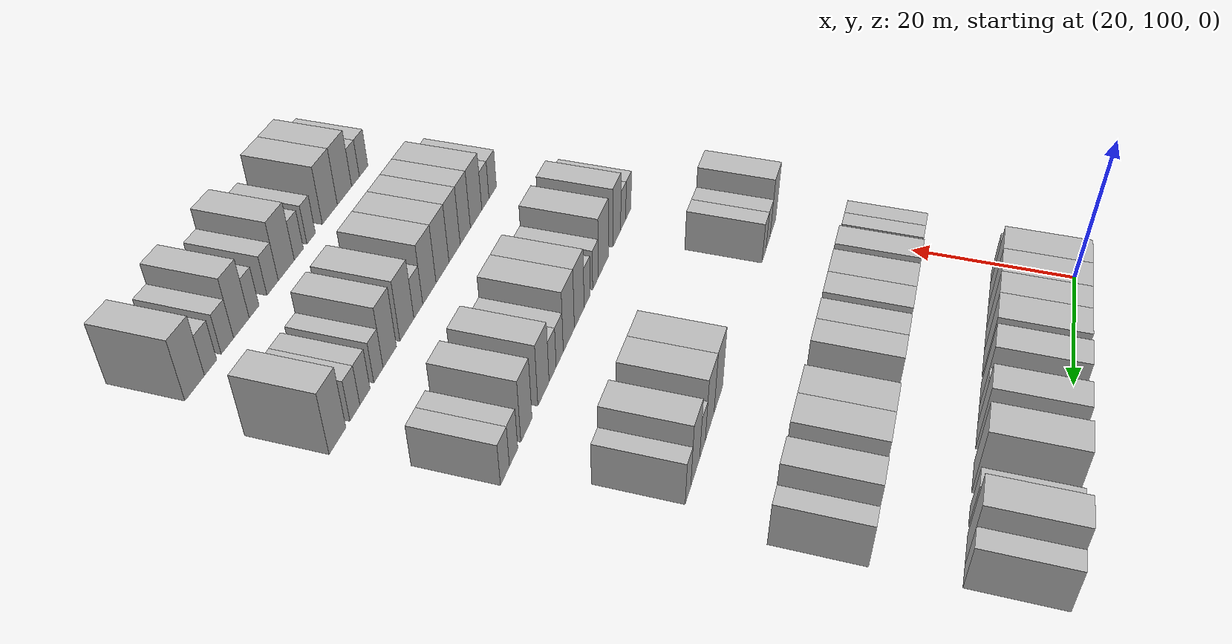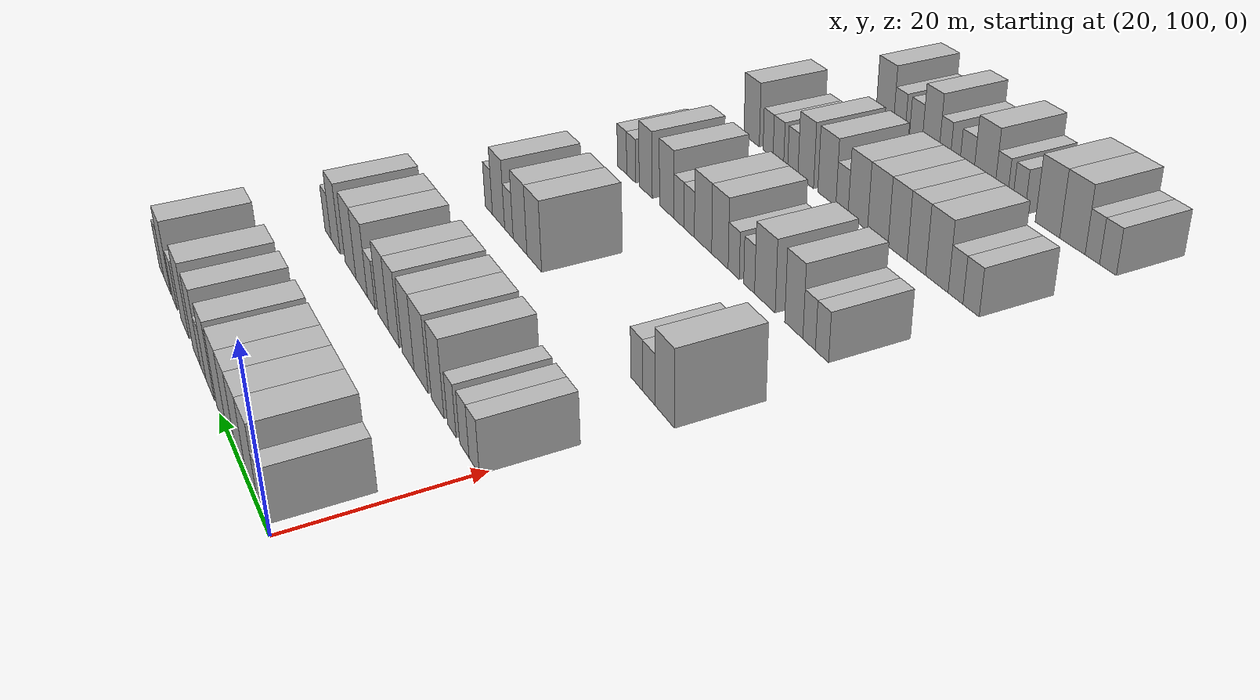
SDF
<sdf version="1.6">
 <world name="default">
  <model name="building_112">
   <static>1</static>
   <pose>25.0000 102.9761 0 0.000000 0.000000 0.000000</pose>
   <link name="link">
    <pose>0 0 3.00 0 0 0</pose>
    <collision name="collision"><geometry><box><size>10.0000 2.6244 6.0000</size></box></geometry></collision>
    <visual name="visual">
     <cast_shadows>0</cast_shadows>
     <geometry><box><size>10.0000 2.6244 6.0000</size></box></geometry>
     <material>
      <script>
       <uri>model://HANNAS_wall/materials/scripts</uri>
       <uri>model://HANNAS_wall/materials/textures</uri>
       <name>vrc/HANNAS_wall</name>
      </script>
     </material>
    </visual>
   </link>
  </model>
  <model name="building_113">
   <static>1</static>
   <pose>25.0000 106.5066 0 0.000000 0.000000 0.000000</pose>
   <link name="link">
    <pose>0 0 4.50 0 0 0</pose>
    <collision name="collision"><geometry><box><size>10.0000 4.4366 9.0000</size></box></geometry></collision>
    <visual name="visual">
     <cast_shadows>0</cast_shadows>
     <geometry><box><size>10.0000 4.4366 9.0000</size></box></geometry>
     <material>
      <script>
       <uri>model://HANNAS_wall/materials/scripts</uri>
       <uri>model://HANNAS_wall/materials/textures</uri>
       <name>vrc/HANNAS_wall</name>
      </script>
     </material>
    </visual>
   </link>
  </model>
  <model name="building_114">
   <static>1</static>
   <pose>25.0000 110.9245 0 0.000000 0.000000 0.000000</pose>
   <link name="link">
    <pose>0 0 4.50 0 0 0</pose>
    <collision name="collision"><geometry><box><size>10.0000 4.3992 9.0000</size></box></geometry></collision>
    <visual name="visual">
     <cast_shadows>0</cast_shadows>
     <geometry><box><size>10.0000 4.3992 9.0000</size></box></geometry>
     <material>
      <script>
       <uri>model://HANNAS_wall/materials/scripts</uri>
       <uri>model://HANNAS_wall/materials/textures</uri>
       <name>vrc/HANNAS_wall</name>
      </script>
     </material>
    </visual>
   </link>
  </model>
  <model name="building_115">
   <static>1</static>
   <pose>25.0000 115.0975 0 0.000000 0.000000 0.000000</pose>
   <link name="link">
    <pose>0 0 4.50 0 0 0</pose>
    <collision name="collision"><geometry><box><size>10.0000 3.9470 9.0000</size></box></geometry></collision>
    <visual name="visual">
     <cast_shadows>0</cast_shadows>
     <geometry><box><size>10.0000 3.9470 9.0000</size></box></geometry>
     <material>
      <script>
       <uri>model://HANNAS_wall/materials/scripts</uri>
       <uri>model://HANNAS_wall/materials/textures</uri>
       <name>vrc/HANNAS_wall</name>
      </script>
     </material>
    </visual>
   </link>
  </model>
  <model name="building_116">
   <static>1</static>
   <pose>25.0000 119.3025 0 0.000000 0.000000 0.000000</pose>
   <link name="link">
    <pose>0 0 4.50 0 0 0</pose>
    <collision name="collision"><geometry><box><size>10.0000 4.4630 9.0000</size></box></geometry></collision>
    <visual name="visual">
     <cast_shadows>0</cast_shadows>
     <geometry><box><size>10.0000 4.4630 9.0000</size></box></geometry>
     <material>
      <script>
       <uri>model://HANNAS_wall/materials/scripts</uri>
       <uri>model://HANNAS_wall/materials/textures</uri>
       <name>vrc/HANNAS_wall</name>
      </script>
     </material>
    </visual>
   </link>
  </model>
  <model name="building_117">
   <static>1</static>
   <pose>25.0000 124.5095 0 0.000000 0.000000 0.000000</pose>
   <link name="link">
    <pose>0 0 4.50 0 0 0</pose>
    <collision name="collision"><geometry><box><size>10.0000 3.9509 9.0000</size></box></geometry></collision>
    <visual name="visual">
     <cast_shadows>0</cast_shadows>
     <geometry><box><size>10.0000 3.9509 9.0000</size></box></geometry>
     <material>
      <script>
       <uri>model://HANNAS_wall/materials/scripts</uri>
       <uri>model://HANNAS_wall/materials/textures</uri>
       <name>vrc/HANNAS_wall</name>
      </script>
     </material>
    </visual>
   </link>
  </model>
  <model name="building_118">
   <static>1</static>
   <pose>25.0000 127.8314 0 0.000000 0.000000 0.000000</pose>
   <link name="link">
    <pose>0 0 3.00 0 0 0</pose>
    <collision name="collision"><geometry><box><size>10.0000 2.6929 6.0000</size></box></geometry></collision>
    <visual name="visual">
     <cast_shadows>0</cast_shadows>
     <geometry><box><size>10.0000 2.6929 6.0000</size></box></geometry>
     <material>
      <script>
       <uri>model://HANNAS_wall/materials/scripts</uri>
       <uri>model://HANNAS_wall/materials/textures</uri>
       <name>vrc/HANNAS_wall</name>
      </script>
     </material>
    </visual>
   </link>
  </model>
  <model name="building_119">
   <static>1</static>
   <pose>25.0000 131.0985 0 0.000000 0.000000 0.000000</pose>
   <link name="link">
    <pose>0 0 4.50 0 0 0</pose>
    <collision name="collision"><geometry><box><size>10.0000 3.8414 9.0000</size></box></geometry></collision>
    <visual name="visual">
     <cast_shadows>0</cast_shadows>
     <geometry><box><size>10.0000 3.8414 9.0000</size></box></geometry>
     <material>
      <script>
       <uri>model://HANNAS_wall/materials/scripts</uri>
       <uri>model://HANNAS_wall/materials/textures</uri>
       <name>vrc/HANNAS_wall</name>
      </script>
     </material>
    </visual>
   </link>
  </model>
  <model name="building_120">
   <static>1</static>
   <pose>25.0000 137.2271 0 0.000000 0.000000 0.000000</pose>
   <link name="link">
    <pose>0 0 4.50 0 0 0</pose>
    <collision name="collision"><geometry><box><size>10.0000 4.4159 9.0000</size></box></geometry></collision>
    <visual name="visual">
     <cast_shadows>0</cast_shadows>
     <geometry><box><size>10.0000 4.4159 9.0000</size></box></geometry>
     <material>
      <script>
       <uri>model://HANNAS_wall/materials/scripts</uri>
       <uri>model://HANNAS_wall/materials/textures</uri>
       <name>vrc/HANNAS_wall</name>
      </script>
     </material>
    </visual>
   </link>
  </model>
  <model name="building_121">
   <static>1</static>
   <pose>25.0000 142.7573 0 0.000000 0.000000 0.000000</pose>
   <link name="link">
    <pose>0 0 3.00 0 0 0</pose>
    <collision name="collision"><geometry><box><size>10.0000 2.6445 6.0000</size></box></geometry></collision>
    <visual name="visual">
     <cast_shadows>0</cast_shadows>
     <geometry><box><size>10.0000 2.6445 6.0000</size></box></geometry>
     <material>
      <script>
       <uri>model://HANNAS_wall/materials/scripts</uri>
       <uri>model://HANNAS_wall/materials/textures</uri>
       <name>vrc/HANNAS_wall</name>
      </script>
     </material>
    </visual>
   </link>
  </model>
  <model name="building_122">
   <static>1</static>
   <pose>25.0000 147.1437 0 0.000000 0.000000 0.000000</pose>
   <link name="link">
    <pose>0 0 4.50 0 0 0</pose>
    <collision name="collision"><geometry><box><size>10.0000 4.1284 9.0000</size></box></geometry></collision>
    <visual name="visual">
     <cast_shadows>0</cast_shadows>
     <geometry><box><size>10.0000 4.1284 9.0000</size></box></geometry>
     <material>
      <script>
       <uri>model://HANNAS_wall/materials/scripts</uri>
       <uri>model://HANNAS_wall/materials/textures</uri>
       <name>vrc/HANNAS_wall</name>
      </script>
     </material>
    </visual>
   </link>
  </model>
  <model name="building_123">
   <static>1</static>
   <pose>25.0000 150.5552 0 0.000000 0.000000 0.000000</pose>
   <link name="link">
    <pose>0 0 3.00 0 0 0</pose>
    <collision name="collision"><geometry><box><size>10.0000 2.6947 6.0000</size></box></geometry></collision>
    <visual name="visual">
     <cast_shadows>0</cast_shadows>
     <geometry><box><size>10.0000 2.6947 6.0000</size></box></geometry>
     <material>
      <script>
       <uri>model://HANNAS_wall/materials/scripts</uri>
       <uri>model://HANNAS_wall/materials/textures</uri>
       <name>vrc/HANNAS_wall</name>
      </script>
     </material>
    </visual>
   </link>
  </model>
  <model name="building_283">
   <static>1</static>
   <pose>44.0000 101.2700 0 0.000000 0.000000 0.000000</pose>
   <link name="link">
    <pose>0 0 3.00 0 0 0</pose>
    <collision name="collision"><geometry><box><size>10.0000 2.6742 6.0000</size></box></geometry></collision>
    <visual name="visual">
     <cast_shadows>0</cast_shadows>
     <geometry><box><size>10.0000 2.6742 6.0000</size></box></geometry>
     <material>
      <script>
       <uri>model://HANNAS_wall/materials/scripts</uri>
       <uri>model://HANNAS_wall/materials/textures</uri>
       <name>vrc/HANNAS_wall</name>
      </script>
     </material>
    </visual>
   </link>
  </model>
  <model name="building_284">
   <static>1</static>
   <pose>44.0000 103.8863 0 0.000000 0.000000 0.000000</pose>
   <link name="link">
    <pose>0 0 3.00 0 0 0</pose>
    <collision name="collision"><geometry><box><size>10.0000 2.5584 6.0000</size></box></geometry></collision>
    <visual name="visual">
     <cast_shadows>0</cast_shadows>
     <geometry><box><size>10.0000 2.5584 6.0000</size></box></geometry>
     <material>
      <script>
       <uri>model://HANNAS_wall/materials/scripts</uri>
       <uri>model://HANNAS_wall/materials/textures</uri>
       <name>vrc/HANNAS_wall</name>
      </script>
     </material>
    </visual>
   </link>
  </model>
  <model name="building_285">
   <static>1</static>
   <pose>44.0000 107.3818 0 0.000000 0.000000 0.000000</pose>
   <link name="link">
    <pose>0 0 3.00 0 0 0</pose>
    <collision name="collision"><geometry><box><size>10.0000 2.4325 6.0000</size></box></geometry></collision>
    <visual name="visual">
     <cast_shadows>0</cast_shadows>
     <geometry><box><size>10.0000 2.4325 6.0000</size></box></geometry>
     <material>
      <script>
       <uri>model://HANNAS_wall/materials/scripts</uri>
       <uri>model://HANNAS_wall/materials/textures</uri>
       <name>vrc/HANNAS_wall</name>
      </script>
     </material>
    </visual>
   </link>
  </model>
  <model name="building_286">
   <static>1</static>
   <pose>44.0000 111.4517 0 0.000000 0.000000 0.000000</pose>
   <link name="link">
    <pose>0 0 4.50 0 0 0</pose>
    <collision name="collision"><geometry><box><size>10.0000 3.7073 9.0000</size></box></geometry></collision>
    <visual name="visual">
     <cast_shadows>0</cast_shadows>
     <geometry><box><size>10.0000 3.7073 9.0000</size></box></geometry>
     <material>
      <script>
       <uri>model://HANNAS_wall/materials/scripts</uri>
       <uri>model://HANNAS_wall/materials/textures</uri>
       <name>vrc/HANNAS_wall</name>
      </script>
     </material>
    </visual>
   </link>
  </model>
  <model name="building_287">
   <static>1</static>
   <pose>44.0000 116.4808 0 0.000000 0.000000 0.000000</pose>
   <link name="link">
    <pose>0 0 4.50 0 0 0</pose>
    <collision name="collision"><geometry><box><size>10.0000 4.3509 9.0000</size></box></geometry></collision>
    <visual name="visual">
     <cast_shadows>0</cast_shadows>
     <geometry><box><size>10.0000 4.3509 9.0000</size></box></geometry>
     <material>
      <script>
       <uri>model://HANNAS_wall/materials/scripts</uri>
       <uri>model://HANNAS_wall/materials/textures</uri>
       <name>vrc/HANNAS_wall</name>
      </script>
     </material>
    </visual>
   </link>
  </model>
  <model name="building_288">
   <static>1</static>
   <pose>44.0000 120.5811 0 0.000000 0.000000 0.000000</pose>
   <link name="link">
    <pose>0 0 4.50 0 0 0</pose>
    <collision name="collision"><geometry><box><size>10.0000 3.8497 9.0000</size></box></geometry></collision>
    <visual name="visual">
     <cast_shadows>0</cast_shadows>
     <geometry><box><size>10.0000 3.8497 9.0000</size></box></geometry>
     <material>
      <script>
       <uri>model://HANNAS_wall/materials/scripts</uri>
       <uri>model://HANNAS_wall/materials/textures</uri>
       <name>vrc/HANNAS_wall</name>
      </script>
     </material>
    </visual>
   </link>
  </model>
  <model name="building_289">
   <static>1</static>
   <pose>44.0000 125.3266 0 0.000000 0.000000 0.000000</pose>
   <link name="link">
    <pose>0 0 4.50 0 0 0</pose>
    <collision name="collision"><geometry><box><size>10.0000 3.6413 9.0000</size></box></geometry></collision>
    <visual name="visual">
     <cast_shadows>0</cast_shadows>
     <geometry><box><size>10.0000 3.6413 9.0000</size></box></geometry>
     <material>
      <script>
       <uri>model://HANNAS_wall/materials/scripts</uri>
       <uri>model://HANNAS_wall/materials/textures</uri>
       <name>vrc/HANNAS_wall</name>
      </script>
     </material>
    </visual>
   </link>
  </model>
  <model name="building_290">
   <static>1</static>
   <pose>44.0000 129.0394 0 0.000000 0.000000 0.000000</pose>
   <link name="link">
    <pose>0 0 4.50 0 0 0</pose>
    <collision name="collision"><geometry><box><size>10.0000 3.7844 9.0000</size></box></geometry></collision>
    <visual name="visual">
     <cast_shadows>0</cast_shadows>
     <geometry><box><size>10.0000 3.7844 9.0000</size></box></geometry>
     <material>
      <script>
       <uri>model://HANNAS_wall/materials/scripts</uri>
       <uri>model://HANNAS_wall/materials/textures</uri>
       <name>vrc/HANNAS_wall</name>
      </script>
     </material>
    </visual>
   </link>
  </model>
  <model name="building_291">
   <static>1</static>
   <pose>44.0000 133.3731 0 0.000000 0.000000 0.000000</pose>
   <link name="link">
    <pose>0 0 3.00 0 0 0</pose>
    <collision name="collision"><geometry><box><size>10.0000 2.8829 6.0000</size></box></geometry></collision>
    <visual name="visual">
     <cast_shadows>0</cast_shadows>
     <geometry><box><size>10.0000 2.8829 6.0000</size></box></geometry>
     <material>
      <script>
       <uri>model://HANNAS_wall/materials/scripts</uri>
       <uri>model://HANNAS_wall/materials/textures</uri>
       <name>vrc/HANNAS_wall</name>
      </script>
     </material>
    </visual>
   </link>
  </model>
  <model name="building_292">
   <static>1</static>
   <pose>44.0000 136.9829 0 0.000000 0.000000 0.000000</pose>
   <link name="link">
    <pose>0 0 4.50 0 0 0</pose>
    <collision name="collision"><geometry><box><size>10.0000 4.3368 9.0000</size></box></geometry></collision>
    <visual name="visual">
     <cast_shadows>0</cast_shadows>
     <geometry><box><size>10.0000 4.3368 9.0000</size></box></geometry>
     <material>
      <script>
       <uri>model://HANNAS_wall/materials/scripts</uri>
       <uri>model://HANNAS_wall/materials/textures</uri>
       <name>vrc/HANNAS_wall</name>
      </script>
     </material>
    </visual>
   </link>
  </model>
  <model name="building_293">
   <static>1</static>
   <pose>44.0000 141.3079 0 0.000000 0.000000 0.000000</pose>
   <link name="link">
    <pose>0 0 4.50 0 0 0</pose>
    <collision name="collision"><geometry><box><size>10.0000 4.3132 9.0000</size></box></geometry></collision>
    <visual name="visual">
     <cast_shadows>0</cast_shadows>
     <geometry><box><size>10.0000 4.3132 9.0000</size></box></geometry>
     <material>
      <script>
       <uri>model://HANNAS_wall/materials/scripts</uri>
       <uri>model://HANNAS_wall/materials/textures</uri>
       <name>vrc/HANNAS_wall</name>
      </script>
     </material>
    </visual>
   </link>
  </model>
  <model name="building_294">
   <static>1</static>
   <pose>44.0000 147.3736 0 0.000000 0.000000 0.000000</pose>
   <link name="link">
    <pose>0 0 4.50 0 0 0</pose>
    <collision name="collision"><geometry><box><size>10.0000 3.8181 9.0000</size></box></geometry></collision>
    <visual name="visual">
     <cast_shadows>0</cast_shadows>
     <geometry><box><size>10.0000 3.8181 9.0000</size></box></geometry>
     <material>
      <script>
       <uri>model://HANNAS_wall/materials/scripts</uri>
       <uri>model://HANNAS_wall/materials/textures</uri>
       <name>vrc/HANNAS_wall</name>
      </script>
     </material>
    </visual>
   </link>
  </model>
  <model name="building_295">
   <static>1</static>
   <pose>44.0000 150.6027 0 0.000000 0.000000 0.000000</pose>
   <link name="link">
    <pose>0 0 3.00 0 0 0</pose>
    <collision name="collision"><geometry><box><size>10.0000 2.6401 6.0000</size></box></geometry></collision>
    <visual name="visual">
     <cast_shadows>0</cast_shadows>
     <geometry><box><size>10.0000 2.6401 6.0000</size></box></geometry>
     <material>
      <script>
       <uri>model://HANNAS_wall/materials/scripts</uri>
       <uri>model://HANNAS_wall/materials/textures</uri>
       <name>vrc/HANNAS_wall</name>
      </script>
     </material>
    </visual>
   </link>
  </model>
  <model name="building_454">
   <static>1</static>
   <pose>63.0000 100.3011 0 0.000000 0.000000 0.000000</pose>
   <link name="link">
    <pose>0 0 4.50 0 0 0</pose>
    <collision name="collision"><geometry><box><size>10.0000 4.1284 9.0000</size></box></geometry></collision>
    <visual name="visual">
     <cast_shadows>0</cast_shadows>
     <geometry><box><size>10.0000 4.1284 9.0000</size></box></geometry>
     <material>
      <script>
       <uri>model://HANNAS_wall/materials/scripts</uri>
       <uri>model://HANNAS_wall/materials/textures</uri>
       <name>vrc/HANNAS_wall</name>
      </script>
     </material>
    </visual>
   </link>
  </model>
  <model name="building_455">
   <static>1</static>
   <pose>63.0000 103.7687 0 0.000000 0.000000 0.000000</pose>
   <link name="link">
    <pose>0 0 3.00 0 0 0</pose>
    <collision name="collision"><geometry><box><size>10.0000 2.8069 6.0000</size></box></geometry></collision>
    <visual name="visual">
     <cast_shadows>0</cast_shadows>
     <geometry><box><size>10.0000 2.8069 6.0000</size></box></geometry>
     <material>
      <script>
       <uri>model://HANNAS_wall/materials/scripts</uri>
       <uri>model://HANNAS_wall/materials/textures</uri>
       <name>vrc/HANNAS_wall</name>
      </script>
     </material>
    </visual>
   </link>
  </model>
  <model name="building_456">
   <static>1</static>
   <pose>63.0000 106.5194 0 0.000000 0.000000 0.000000</pose>
   <link name="link">
    <pose>0 0 3.00 0 0 0</pose>
    <collision name="collision"><geometry><box><size>10.0000 2.6943 6.0000</size></box></geometry></collision>
    <visual name="visual">
     <cast_shadows>0</cast_shadows>
     <geometry><box><size>10.0000 2.6943 6.0000</size></box></geometry>
     <material>
      <script>
       <uri>model://HANNAS_wall/materials/scripts</uri>
       <uri>model://HANNAS_wall/materials/textures</uri>
       <name>vrc/HANNAS_wall</name>
      </script>
     </material>
    </visual>
   </link>
  </model>
  <model name="building_457">
   <static>1</static>
   <pose>63.0000 133.4532 0 0.000000 0.000000 0.000000</pose>
   <link name="link">
    <pose>0 0 4.50 0 0 0</pose>
    <collision name="collision"><geometry><box><size>10.0000 4.3911 9.0000</size></box></geometry></collision>
    <visual name="visual">
     <cast_shadows>0</cast_shadows>
     <geometry><box><size>10.0000 4.3911 9.0000</size></box></geometry>
     <material>
      <script>
       <uri>model://HANNAS_wall/materials/scripts</uri>
       <uri>model://HANNAS_wall/materials/textures</uri>
       <name>vrc/HANNAS_wall</name>
      </script>
     </material>
    </visual>
   </link>
  </model>
  <model name="building_458">
   <static>1</static>
   <pose>63.0000 137.7979 0 0.000000 0.000000 0.000000</pose>
   <link name="link">
    <pose>0 0 4.50 0 0 0</pose>
    <collision name="collision"><geometry><box><size>10.0000 4.2982 9.0000</size></box></geometry></collision>
    <visual name="visual">
     <cast_shadows>0</cast_shadows>
     <geometry><box><size>10.0000 4.2982 9.0000</size></box></geometry>
     <material>
      <script>
       <uri>model://HANNAS_wall/materials/scripts</uri>
       <uri>model://HANNAS_wall/materials/textures</uri>
       <name>vrc/HANNAS_wall</name>
      </script>
     </material>
    </visual>
   </link>
  </model>
  <model name="building_459">
   <static>1</static>
   <pose>63.0000 141.3113 0 0.000000 0.000000 0.000000</pose>
   <link name="link">
    <pose>0 0 3.00 0 0 0</pose>
    <collision name="collision"><geometry><box><size>10.0000 2.7286 6.0000</size></box></geometry></collision>
    <visual name="visual">
     <cast_shadows>0</cast_shadows>
     <geometry><box><size>10.0000 2.7286 6.0000</size></box></geometry>
     <material>
      <script>
       <uri>model://HANNAS_wall/materials/scripts</uri>
       <uri>model://HANNAS_wall/materials/textures</uri>
       <name>vrc/HANNAS_wall</name>
      </script>
     </material>
    </visual>
   </link>
  </model>
  <model name="building_460">
   <static>1</static>
   <pose>63.0000 144.6916 0 0.000000 0.000000 0.000000</pose>
   <link name="link">
    <pose>0 0 4.50 0 0 0</pose>
    <collision name="collision"><geometry><box><size>10.0000 4.0320 9.0000</size></box></geometry></collision>
    <visual name="visual">
     <cast_shadows>0</cast_shadows>
     <geometry><box><size>10.0000 4.0320 9.0000</size></box></geometry>
     <material>
      <script>
       <uri>model://HANNAS_wall/materials/scripts</uri>
       <uri>model://HANNAS_wall/materials/textures</uri>
       <name>vrc/HANNAS_wall</name>
      </script>
     </material>
    </visual>
   </link>
  </model>
  <model name="building_461">
   <static>1</static>
   <pose>63.0000 147.9369 0 0.000000 0.000000 0.000000</pose>
   <link name="link">
    <pose>0 0 3.00 0 0 0</pose>
    <collision name="collision"><geometry><box><size>10.0000 2.4587 6.0000</size></box></geometry></collision>
    <visual name="visual">
     <cast_shadows>0</cast_shadows>
     <geometry><box><size>10.0000 2.4587 6.0000</size></box></geometry>
     <material>
      <script>
       <uri>model://HANNAS_wall/materials/scripts</uri>
       <uri>model://HANNAS_wall/materials/textures</uri>
       <name>vrc/HANNAS_wall</name>
      </script>
     </material>
    </visual>
   </link>
  </model>
  <model name="building_624">
   <static>1</static>
   <pose>82.0000 102.4668 0 0.000000 0.000000 0.000000</pose>
   <link name="link">
    <pose>0 0 3.00 0 0 0</pose>
    <collision name="collision"><geometry><box><size>10.0000 2.5562 6.0000</size></box></geometry></collision>
    <visual name="visual">
     <cast_shadows>0</cast_shadows>
     <geometry><box><size>10.0000 2.5562 6.0000</size></box></geometry>
     <material>
      <script>
       <uri>model://HANNAS_wall/materials/scripts</uri>
       <uri>model://HANNAS_wall/materials/textures</uri>
       <name>vrc/HANNAS_wall</name>
      </script>
     </material>
    </visual>
   </link>
  </model>
  <model name="building_625">
   <static>1</static>
   <pose>82.0000 104.9858 0 0.000000 0.000000 0.000000</pose>
   <link name="link">
    <pose>0 0 3.00 0 0 0</pose>
    <collision name="collision"><geometry><box><size>10.0000 2.4817 6.0000</size></box></geometry></collision>
    <visual name="visual">
     <cast_shadows>0</cast_shadows>
     <geometry><box><size>10.0000 2.4817 6.0000</size></box></geometry>
     <material>
      <script>
       <uri>model://HANNAS_wall/materials/scripts</uri>
       <uri>model://HANNAS_wall/materials/textures</uri>
       <name>vrc/HANNAS_wall</name>
      </script>
     </material>
    </visual>
   </link>
  </model>
  <model name="building_626">
   <static>1</static>
   <pose>82.0000 108.0893 0 0.000000 0.000000 0.000000</pose>
   <link name="link">
    <pose>0 0 4.50 0 0 0</pose>
    <collision name="collision"><geometry><box><size>10.0000 3.7255 9.0000</size></box></geometry></collision>
    <visual name="visual">
     <cast_shadows>0</cast_shadows>
     <geometry><box><size>10.0000 3.7255 9.0000</size></box></geometry>
     <material>
      <script>
       <uri>model://HANNAS_wall/materials/scripts</uri>
       <uri>model://HANNAS_wall/materials/textures</uri>
       <name>vrc/HANNAS_wall</name>
      </script>
     </material>
    </visual>
   </link>
  </model>
  <model name="building_627">
   <static>1</static>
   <pose>82.0000 114.1922 0 0.000000 0.000000 0.000000</pose>
   <link name="link">
    <pose>0 0 4.50 0 0 0</pose>
    <collision name="collision"><geometry><box><size>10.0000 4.4802 9.0000</size></box></geometry></collision>
    <visual name="visual">
     <cast_shadows>0</cast_shadows>
     <geometry><box><size>10.0000 4.4802 9.0000</size></box></geometry>
     <material>
      <script>
       <uri>model://HANNAS_wall/materials/scripts</uri>
       <uri>model://HANNAS_wall/materials/textures</uri>
       <name>vrc/HANNAS_wall</name>
      </script>
     </material>
    </visual>
   </link>
  </model>
  <model name="building_628">
   <static>1</static>
   <pose>82.0000 117.6572 0 0.000000 0.000000 0.000000</pose>
   <link name="link">
    <pose>0 0 3.00 0 0 0</pose>
    <collision name="collision"><geometry><box><size>10.0000 2.4496 6.0000</size></box></geometry></collision>
    <visual name="visual">
     <cast_shadows>0</cast_shadows>
     <geometry><box><size>10.0000 2.4496 6.0000</size></box></geometry>
     <material>
      <script>
       <uri>model://HANNAS_wall/materials/scripts</uri>
       <uri>model://HANNAS_wall/materials/textures</uri>
       <name>vrc/HANNAS_wall</name>
      </script>
     </material>
    </visual>
   </link>
  </model>
  <model name="building_629">
   <static>1</static>
   <pose>82.0000 121.1726 0 0.000000 0.000000 0.000000</pose>
   <link name="link">
    <pose>0 0 3.00 0 0 0</pose>
    <collision name="collision"><geometry><box><size>10.0000 2.5813 6.0000</size></box></geometry></collision>
    <visual name="visual">
     <cast_shadows>0</cast_shadows>
     <geometry><box><size>10.0000 2.5813 6.0000</size></box></geometry>
     <material>
      <script>
       <uri>model://HANNAS_wall/materials/scripts</uri>
       <uri>model://HANNAS_wall/materials/textures</uri>
       <name>vrc/HANNAS_wall</name>
      </script>
     </material>
    </visual>
   </link>
  </model>
  <model name="building_630">
   <static>1</static>
   <pose>82.0000 124.4366 0 0.000000 0.000000 0.000000</pose>
   <link name="link">
    <pose>0 0 4.50 0 0 0</pose>
    <collision name="collision"><geometry><box><size>10.0000 3.9466 9.0000</size></box></geometry></collision>
    <visual name="visual">
     <cast_shadows>0</cast_shadows>
     <geometry><box><size>10.0000 3.9466 9.0000</size></box></geometry>
     <material>
      <script>
       <uri>model://HANNAS_wall/materials/scripts</uri>
       <uri>model://HANNAS_wall/materials/textures</uri>
       <name>vrc/HANNAS_wall</name>
      </script>
     </material>
    </visual>
   </link>
  </model>
  <model name="building_631">
   <static>1</static>
   <pose>82.0000 128.5493 0 0.000000 0.000000 0.000000</pose>
   <link name="link">
    <pose>0 0 4.50 0 0 0</pose>
    <collision name="collision"><geometry><box><size>10.0000 4.2789 9.0000</size></box></geometry></collision>
    <visual name="visual">
     <cast_shadows>0</cast_shadows>
     <geometry><box><size>10.0000 4.2789 9.0000</size></box></geometry>
     <material>
      <script>
       <uri>model://HANNAS_wall/materials/scripts</uri>
       <uri>model://HANNAS_wall/materials/textures</uri>
       <name>vrc/HANNAS_wall</name>
      </script>
     </material>
    </visual>
   </link>
  </model>
  <model name="building_632">
   <static>1</static>
   <pose>82.0000 132.0254 0 0.000000 0.000000 0.000000</pose>
   <link name="link">
    <pose>0 0 3.00 0 0 0</pose>
    <collision name="collision"><geometry><box><size>10.0000 2.6733 6.0000</size></box></geometry></collision>
    <visual name="visual">
     <cast_shadows>0</cast_shadows>
     <geometry><box><size>10.0000 2.6733 6.0000</size></box></geometry>
     <material>
      <script>
       <uri>model://HANNAS_wall/materials/scripts</uri>
       <uri>model://HANNAS_wall/materials/textures</uri>
       <name>vrc/HANNAS_wall</name>
      </script>
     </material>
    </visual>
   </link>
  </model>
  <model name="building_633">
   <static>1</static>
   <pose>82.0000 134.6490 0 0.000000 0.000000 0.000000</pose>
   <link name="link">
    <pose>0 0 3.00 0 0 0</pose>
    <collision name="collision"><geometry><box><size>10.0000 2.5739 6.0000</size></box></geometry></collision>
    <visual name="visual">
     <cast_shadows>0</cast_shadows>
     <geometry><box><size>10.0000 2.5739 6.0000</size></box></geometry>
     <material>
      <script>
       <uri>model://HANNAS_wall/materials/scripts</uri>
       <uri>model://HANNAS_wall/materials/textures</uri>
       <name>vrc/HANNAS_wall</name>
      </script>
     </material>
    </visual>
   </link>
  </model>
  <model name="building_634">
   <static>1</static>
   <pose>82.0000 137.9061 0 0.000000 0.000000 0.000000</pose>
   <link name="link">
    <pose>0 0 4.50 0 0 0</pose>
    <collision name="collision"><geometry><box><size>10.0000 3.9403 9.0000</size></box></geometry></collision>
    <visual name="visual">
     <cast_shadows>0</cast_shadows>
     <geometry><box><size>10.0000 3.9403 9.0000</size></box></geometry>
     <material>
      <script>
       <uri>model://HANNAS_wall/materials/scripts</uri>
       <uri>model://HANNAS_wall/materials/textures</uri>
       <name>vrc/HANNAS_wall</name>
      </script>
     </material>
    </visual>
   </link>
  </model>
  <model name="building_635">
   <static>1</static>
   <pose>82.0000 143.7224 0 0.000000 0.000000 0.000000</pose>
   <link name="link">
    <pose>0 0 4.50 0 0 0</pose>
    <collision name="collision"><geometry><box><size>10.0000 3.6925 9.0000</size></box></geometry></collision>
    <visual name="visual">
     <cast_shadows>0</cast_shadows>
     <geometry><box><size>10.0000 3.6925 9.0000</size></box></geometry>
     <material>
      <script>
       <uri>model://HANNAS_wall/materials/scripts</uri>
       <uri>model://HANNAS_wall/materials/textures</uri>
       <name>vrc/HANNAS_wall</name>
      </script>
     </material>
    </visual>
   </link>
  </model>
  <model name="building_636">
   <static>1</static>
   <pose>82.0000 147.8840 0 0.000000 0.000000 0.000000</pose>
   <link name="link">
    <pose>0 0 3.00 0 0 0</pose>
    <collision name="collision"><geometry><box><size>10.0000 2.6306 6.0000</size></box></geometry></collision>
    <visual name="visual">
     <cast_shadows>0</cast_shadows>
     <geometry><box><size>10.0000 2.6306 6.0000</size></box></geometry>
     <material>
      <script>
       <uri>model://HANNAS_wall/materials/scripts</uri>
       <uri>model://HANNAS_wall/materials/textures</uri>
       <name>vrc/HANNAS_wall</name>
      </script>
     </material>
    </visual>
   </link>
  </model>
  <model name="building_637">
   <static>1</static>
   <pose>82.0000 150.5774 0 0.000000 0.000000 0.000000</pose>
   <link name="link">
    <pose>0 0 3.00 0 0 0</pose>
    <collision name="collision"><geometry><box><size>10.0000 2.7562 6.0000</size></box></geometry></collision>
    <visual name="visual">
     <cast_shadows>0</cast_shadows>
     <geometry><box><size>10.0000 2.7562 6.0000</size></box></geometry>
     <material>
      <script>
       <uri>model://HANNAS_wall/materials/scripts</uri>
       <uri>model://HANNAS_wall/materials/textures</uri>
       <name>vrc/HANNAS_wall</name>
      </script>
     </material>
    </visual>
   </link>
  </model>
  <model name="building_796">
   <static>1</static>
   <pose>101.0000 102.8741 0 0.000000 0.000000 0.000000</pose>
   <link name="link">
    <pose>0 0 3.00 0 0 0</pose>
    <collision name="collision"><geometry><box><size>10.0000 2.8887 6.0000</size></box></geometry></collision>
    <visual name="visual">
     <cast_shadows>0</cast_shadows>
     <geometry><box><size>10.0000 2.8887 6.0000</size></box></geometry>
     <material>
      <script>
       <uri>model://HANNAS_wall/materials/scripts</uri>
       <uri>model://HANNAS_wall/materials/textures</uri>
       <name>vrc/HANNAS_wall</name>
      </script>
     </material>
    </visual>
   </link>
  </model>
  <model name="building_797">
   <static>1</static>
   <pose>101.0000 105.6708 0 0.000000 0.000000 0.000000</pose>
   <link name="link">
    <pose>0 0 3.00 0 0 0</pose>
    <collision name="collision"><geometry><box><size>10.0000 2.7047 6.0000</size></box></geometry></collision>
    <visual name="visual">
     <cast_shadows>0</cast_shadows>
     <geometry><box><size>10.0000 2.7047 6.0000</size></box></geometry>
     <material>
      <script>
       <uri>model://HANNAS_wall/materials/scripts</uri>
       <uri>model://HANNAS_wall/materials/textures</uri>
       <name>vrc/HANNAS_wall</name>
      </script>
     </material>
    </visual>
   </link>
  </model>
  <model name="building_798">
   <static>1</static>
   <pose>101.0000 109.1387 0 0.000000 0.000000 0.000000</pose>
   <link name="link">
    <pose>0 0 4.50 0 0 0</pose>
    <collision name="collision"><geometry><box><size>10.0000 4.2311 9.0000</size></box></geometry></collision>
    <visual name="visual">
     <cast_shadows>0</cast_shadows>
     <geometry><box><size>10.0000 4.2311 9.0000</size></box></geometry>
     <material>
      <script>
       <uri>model://HANNAS_wall/materials/scripts</uri>
       <uri>model://HANNAS_wall/materials/textures</uri>
       <name>vrc/HANNAS_wall</name>
      </script>
     </material>
    </visual>
   </link>
  </model>
  <model name="building_799">
   <static>1</static>
   <pose>101.0000 113.0696 0 0.000000 0.000000 0.000000</pose>
   <link name="link">
    <pose>0 0 4.50 0 0 0</pose>
    <collision name="collision"><geometry><box><size>10.0000 3.6308 9.0000</size></box></geometry></collision>
    <visual name="visual">
     <cast_shadows>0</cast_shadows>
     <geometry><box><size>10.0000 3.6308 9.0000</size></box></geometry>
     <material>
      <script>
       <uri>model://HANNAS_wall/materials/scripts</uri>
       <uri>model://HANNAS_wall/materials/textures</uri>
       <name>vrc/HANNAS_wall</name>
      </script>
     </material>
    </visual>
   </link>
  </model>
  <model name="building_800">
   <static>1</static>
   <pose>101.0000 116.8111 0 0.000000 0.000000 0.000000</pose>
   <link name="link">
    <pose>0 0 4.50 0 0 0</pose>
    <collision name="collision"><geometry><box><size>10.0000 3.8520 9.0000</size></box></geometry></collision>
    <visual name="visual">
     <cast_shadows>0</cast_shadows>
     <geometry><box><size>10.0000 3.8520 9.0000</size></box></geometry>
     <material>
      <script>
       <uri>model://HANNAS_wall/materials/scripts</uri>
       <uri>model://HANNAS_wall/materials/textures</uri>
       <name>vrc/HANNAS_wall</name>
      </script>
     </material>
    </visual>
   </link>
  </model>
  <model name="building_801">
   <static>1</static>
   <pose>101.0000 120.8908 0 0.000000 0.000000 0.000000</pose>
   <link name="link">
    <pose>0 0 4.50 0 0 0</pose>
    <collision name="collision"><geometry><box><size>10.0000 4.3075 9.0000</size></box></geometry></collision>
    <visual name="visual">
     <cast_shadows>0</cast_shadows>
     <geometry><box><size>10.0000 4.3075 9.0000</size></box></geometry>
     <material>
      <script>
       <uri>model://HANNAS_wall/materials/scripts</uri>
       <uri>model://HANNAS_wall/materials/textures</uri>
       <name>vrc/HANNAS_wall</name>
      </script>
     </material>
    </visual>
   </link>
  </model>
  <model name="building_802">
   <static>1</static>
   <pose>101.0000 125.1632 0 0.000000 0.000000 0.000000</pose>
   <link name="link">
    <pose>0 0 4.50 0 0 0</pose>
    <collision name="collision"><geometry><box><size>10.0000 4.2374 9.0000</size></box></geometry></collision>
    <visual name="visual">
     <cast_shadows>0</cast_shadows>
     <geometry><box><size>10.0000 4.2374 9.0000</size></box></geometry>
     <material>
      <script>
       <uri>model://HANNAS_wall/materials/scripts</uri>
       <uri>model://HANNAS_wall/materials/textures</uri>
       <name>vrc/HANNAS_wall</name>
      </script>
     </material>
    </visual>
   </link>
  </model>
  <model name="building_803">
   <static>1</static>
   <pose>101.0000 128.6449 0 0.000000 0.000000 0.000000</pose>
   <link name="link">
    <pose>0 0 3.00 0 0 0</pose>
    <collision name="collision"><geometry><box><size>10.0000 2.7260 6.0000</size></box></geometry></collision>
    <visual name="visual">
     <cast_shadows>0</cast_shadows>
     <geometry><box><size>10.0000 2.7260 6.0000</size></box></geometry>
     <material>
      <script>
       <uri>model://HANNAS_wall/materials/scripts</uri>
       <uri>model://HANNAS_wall/materials/textures</uri>
       <name>vrc/HANNAS_wall</name>
      </script>
     </material>
    </visual>
   </link>
  </model>
  <model name="building_804">
   <static>1</static>
   <pose>101.0000 132.0949 0 0.000000 0.000000 0.000000</pose>
   <link name="link">
    <pose>0 0 4.50 0 0 0</pose>
    <collision name="collision"><geometry><box><size>10.0000 4.1741 9.0000</size></box></geometry></collision>
    <visual name="visual">
     <cast_shadows>0</cast_shadows>
     <geometry><box><size>10.0000 4.1741 9.0000</size></box></geometry>
     <material>
      <script>
       <uri>model://HANNAS_wall/materials/scripts</uri>
       <uri>model://HANNAS_wall/materials/textures</uri>
       <name>vrc/HANNAS_wall</name>
      </script>
     </material>
    </visual>
   </link>
  </model>
  <model name="building_805">
   <static>1</static>
   <pose>101.0000 137.0751 0 0.000000 0.000000 0.000000</pose>
   <link name="link">
    <pose>0 0 4.50 0 0 0</pose>
    <collision name="collision"><geometry><box><size>10.0000 3.7862 9.0000</size></box></geometry></collision>
    <visual name="visual">
     <cast_shadows>0</cast_shadows>
     <geometry><box><size>10.0000 3.7862 9.0000</size></box></geometry>
     <material>
      <script>
       <uri>model://HANNAS_wall/materials/scripts</uri>
       <uri>model://HANNAS_wall/materials/textures</uri>
       <name>vrc/HANNAS_wall</name>
      </script>
     </material>
    </visual>
   </link>
  </model>
  <model name="building_806">
   <static>1</static>
   <pose>101.0000 140.2344 0 0.000000 0.000000 0.000000</pose>
   <link name="link">
    <pose>0 0 3.00 0 0 0</pose>
    <collision name="collision"><geometry><box><size>10.0000 2.5325 6.0000</size></box></geometry></collision>
    <visual name="visual">
     <cast_shadows>0</cast_shadows>
     <geometry><box><size>10.0000 2.5325 6.0000</size></box></geometry>
     <material>
      <script>
       <uri>model://HANNAS_wall/materials/scripts</uri>
       <uri>model://HANNAS_wall/materials/textures</uri>
       <name>vrc/HANNAS_wall</name>
      </script>
     </material>
    </visual>
   </link>
  </model>
  <model name="building_807">
   <static>1</static>
   <pose>101.0000 143.8526 0 0.000000 0.000000 0.000000</pose>
   <link name="link">
    <pose>0 0 3.00 0 0 0</pose>
    <collision name="collision"><geometry><box><size>10.0000 2.7040 6.0000</size></box></geometry></collision>
    <visual name="visual">
     <cast_shadows>0</cast_shadows>
     <geometry><box><size>10.0000 2.7040 6.0000</size></box></geometry>
     <material>
      <script>
       <uri>model://HANNAS_wall/materials/scripts</uri>
       <uri>model://HANNAS_wall/materials/textures</uri>
       <name>vrc/HANNAS_wall</name>
      </script>
     </material>
    </visual>
   </link>
  </model>
  <model name="building_808">
   <static>1</static>
   <pose>101.0000 146.4962 0 0.000000 0.000000 0.000000</pose>
   <link name="link">
    <pose>0 0 3.00 0 0 0</pose>
    <collision name="collision"><geometry><box><size>10.0000 2.5830 6.0000</size></box></geometry></collision>
    <visual name="visual">
     <cast_shadows>0</cast_shadows>
     <geometry><box><size>10.0000 2.5830 6.0000</size></box></geometry>
     <material>
      <script>
       <uri>model://HANNAS_wall/materials/scripts</uri>
       <uri>model://HANNAS_wall/materials/textures</uri>
       <name>vrc/HANNAS_wall</name>
      </script>
     </material>
    </visual>
   </link>
  </model>
  <model name="building_809">
   <static>1</static>
   <pose>101.0000 150.8472 0 0.000000 0.000000 0.000000</pose>
   <link name="link">
    <pose>0 0 4.50 0 0 0</pose>
    <collision name="collision"><geometry><box><size>10.0000 4.1190 9.0000</size></box></geometry></collision>
    <visual name="visual">
     <cast_shadows>0</cast_shadows>
     <geometry><box><size>10.0000 4.1190 9.0000</size></box></geometry>
     <material>
      <script>
       <uri>model://HANNAS_wall/materials/scripts</uri>
       <uri>model://HANNAS_wall/materials/textures</uri>
       <name>vrc/HANNAS_wall</name>
      </script>
     </material>
    </visual>
   </link>
  </model>
  <model name="building_971">
   <static>1</static>
   <pose>120.0000 103.0205 0 0.000000 0.000000 0.000000</pose>
   <link name="link">
    <pose>0 0 3.00 0 0 0</pose>
    <collision name="collision"><geometry><box><size>10.0000 2.7942 6.0000</size></box></geometry></collision>
    <visual name="visual">
     <cast_shadows>0</cast_shadows>
     <geometry><box><size>10.0000 2.7942 6.0000</size></box></geometry>
     <material>
      <script>
       <uri>model://HANNAS_wall/materials/scripts</uri>
       <uri>model://HANNAS_wall/materials/textures</uri>
       <name>vrc/HANNAS_wall</name>
      </script>
     </material>
    </visual>
   </link>
  </model>
  <model name="building_972">
   <static>1</static>
   <pose>120.0000 105.6491 0 0.000000 0.000000 0.000000</pose>
   <link name="link">
    <pose>0 0 3.00 0 0 0</pose>
    <collision name="collision"><geometry><box><size>10.0000 2.4631 6.0000</size></box></geometry></collision>
    <visual name="visual">
     <cast_shadows>0</cast_shadows>
     <geometry><box><size>10.0000 2.4631 6.0000</size></box></geometry>
     <material>
      <script>
       <uri>model://HANNAS_wall/materials/scripts</uri>
       <uri>model://HANNAS_wall/materials/textures</uri>
       <name>vrc/HANNAS_wall</name>
      </script>
     </material>
    </visual>
   </link>
  </model>
  <model name="building_973">
   <static>1</static>
   <pose>120.0000 109.1064 0 0.000000 0.000000 0.000000</pose>
   <link name="link">
    <pose>0 0 4.50 0 0 0</pose>
    <collision name="collision"><geometry><box><size>10.0000 4.4515 9.0000</size></box></geometry></collision>
    <visual name="visual">
     <cast_shadows>0</cast_shadows>
     <geometry><box><size>10.0000 4.4515 9.0000</size></box></geometry>
     <material>
      <script>
       <uri>model://HANNAS_wall/materials/scripts</uri>
       <uri>model://HANNAS_wall/materials/textures</uri>
       <name>vrc/HANNAS_wall</name>
      </script>
     </material>
    </visual>
   </link>
  </model>
  <model name="building_974">
   <static>1</static>
   <pose>120.0000 113.5765 0 0.000000 0.000000 0.000000</pose>
   <link name="link">
    <pose>0 0 4.50 0 0 0</pose>
    <collision name="collision"><geometry><box><size>10.0000 4.4887 9.0000</size></box></geometry></collision>
    <visual name="visual">
     <cast_shadows>0</cast_shadows>
     <geometry><box><size>10.0000 4.4887 9.0000</size></box></geometry>
     <material>
      <script>
       <uri>model://HANNAS_wall/materials/scripts</uri>
       <uri>model://HANNAS_wall/materials/textures</uri>
       <name>vrc/HANNAS_wall</name>
      </script>
     </material>
    </visual>
   </link>
  </model>
  <model name="building_975">
   <static>1</static>
   <pose>120.0000 119.0268 0 0.000000 0.000000 0.000000</pose>
   <link name="link">
    <pose>0 0 3.00 0 0 0</pose>
    <collision name="collision"><geometry><box><size>10.0000 2.4120 6.0000</size></box></geometry></collision>
    <visual name="visual">
     <cast_shadows>0</cast_shadows>
     <geometry><box><size>10.0000 2.4120 6.0000</size></box></geometry>
     <material>
      <script>
       <uri>model://HANNAS_wall/materials/scripts</uri>
       <uri>model://HANNAS_wall/materials/textures</uri>
       <name>vrc/HANNAS_wall</name>
      </script>
     </material>
    </visual>
   </link>
  </model>
  <model name="building_976">
   <static>1</static>
   <pose>120.0000 122.4852 0 0.000000 0.000000 0.000000</pose>
   <link name="link">
    <pose>0 0 3.00 0 0 0</pose>
    <collision name="collision"><geometry><box><size>10.0000 2.5047 6.0000</size></box></geometry></collision>
    <visual name="visual">
     <cast_shadows>0</cast_shadows>
     <geometry><box><size>10.0000 2.5047 6.0000</size></box></geometry>
     <material>
      <script>
       <uri>model://HANNAS_wall/materials/scripts</uri>
       <uri>model://HANNAS_wall/materials/textures</uri>
       <name>vrc/HANNAS_wall</name>
      </script>
     </material>
    </visual>
   </link>
  </model>
  <model name="building_977">
   <static>1</static>
   <pose>120.0000 125.8829 0 0.000000 0.000000 0.000000</pose>
   <link name="link">
    <pose>0 0 4.50 0 0 0</pose>
    <collision name="collision"><geometry><box><size>10.0000 4.2909 9.0000</size></box></geometry></collision>
    <visual name="visual">
     <cast_shadows>0</cast_shadows>
     <geometry><box><size>10.0000 4.2909 9.0000</size></box></geometry>
     <material>
      <script>
       <uri>model://HANNAS_wall/materials/scripts</uri>
       <uri>model://HANNAS_wall/materials/textures</uri>
       <name>vrc/HANNAS_wall</name>
      </script>
     </material>
    </visual>
   </link>
  </model>
  <model name="building_978">
   <static>1</static>
   <pose>120.0000 129.4925 0 0.000000 0.000000 0.000000</pose>
   <link name="link">
    <pose>0 0 3.00 0 0 0</pose>
    <collision name="collision"><geometry><box><size>10.0000 2.9283 6.0000</size></box></geometry></collision>
    <visual name="visual">
     <cast_shadows>0</cast_shadows>
     <geometry><box><size>10.0000 2.9283 6.0000</size></box></geometry>
     <material>
      <script>
       <uri>model://HANNAS_wall/materials/scripts</uri>
       <uri>model://HANNAS_wall/materials/textures</uri>
       <name>vrc/HANNAS_wall</name>
      </script>
     </material>
    </visual>
   </link>
  </model>
  <model name="building_979">
   <static>1</static>
   <pose>120.0000 134.1702 0 0.000000 0.000000 0.000000</pose>
   <link name="link">
    <pose>0 0 3.00 0 0 0</pose>
    <collision name="collision"><geometry><box><size>10.0000 2.4270 6.0000</size></box></geometry></collision>
    <visual name="visual">
     <cast_shadows>0</cast_shadows>
     <geometry><box><size>10.0000 2.4270 6.0000</size></box></geometry>
     <material>
      <script>
       <uri>model://HANNAS_wall/materials/scripts</uri>
       <uri>model://HANNAS_wall/materials/textures</uri>
       <name>vrc/HANNAS_wall</name>
      </script>
     </material>
    </visual>
   </link>
  </model>
  <model name="building_980">
   <static>1</static>
   <pose>120.0000 137.2520 0 0.000000 0.000000 0.000000</pose>
   <link name="link">
    <pose>0 0 4.50 0 0 0</pose>
    <collision name="collision"><geometry><box><size>10.0000 3.7366 9.0000</size></box></geometry></collision>
    <visual name="visual">
     <cast_shadows>0</cast_shadows>
     <geometry><box><size>10.0000 3.7366 9.0000</size></box></geometry>
     <material>
      <script>
       <uri>model://HANNAS_wall/materials/scripts</uri>
       <uri>model://HANNAS_wall/materials/textures</uri>
       <name>vrc/HANNAS_wall</name>
      </script>
     </material>
    </visual>
   </link>
  </model>
  <model name="building_981">
   <static>1</static>
   <pose>120.0000 140.5596 0 0.000000 0.000000 0.000000</pose>
   <link name="link">
    <pose>0 0 3.00 0 0 0</pose>
    <collision name="collision"><geometry><box><size>10.0000 2.8785 6.0000</size></box></geometry></collision>
    <visual name="visual">
     <cast_shadows>0</cast_shadows>
     <geometry><box><size>10.0000 2.8785 6.0000</size></box></geometry>
     <material>
      <script>
       <uri>model://HANNAS_wall/materials/scripts</uri>
       <uri>model://HANNAS_wall/materials/textures</uri>
       <name>vrc/HANNAS_wall</name>
      </script>
     </material>
    </visual>
   </link>
  </model>
  <model name="building_982">
   <static>1</static>
   <pose>120.0000 144.3797 0 0.000000 0.000000 0.000000</pose>
   <link name="link">
    <pose>0 0 3.00 0 0 0</pose>
    <collision name="collision"><geometry><box><size>10.0000 2.7617 6.0000</size></box></geometry></collision>
    <visual name="visual">
     <cast_shadows>0</cast_shadows>
     <geometry><box><size>10.0000 2.7617 6.0000</size></box></geometry>
     <material>
      <script>
       <uri>model://HANNAS_wall/materials/scripts</uri>
       <uri>model://HANNAS_wall/materials/textures</uri>
       <name>vrc/HANNAS_wall</name>
      </script>
     </material>
    </visual>
   </link>
  </model>
  <model name="building_983">
   <static>1</static>
   <pose>120.0000 147.8695 0 0.000000 0.000000 0.000000</pose>
   <link name="link">
    <pose>0 0 4.50 0 0 0</pose>
    <collision name="collision"><geometry><box><size>10.0000 4.2178 9.0000</size></box></geometry></collision>
    <visual name="visual">
     <cast_shadows>0</cast_shadows>
     <geometry><box><size>10.0000 4.2178 9.0000</size></box></geometry>
     <material>
      <script>
       <uri>model://HANNAS_wall/materials/scripts</uri>
       <uri>model://HANNAS_wall/materials/textures</uri>
       <name>vrc/HANNAS_wall</name>
      </script>
     </material>
    </visual>
   </link>
  </model>
 </world>
</sdf>
